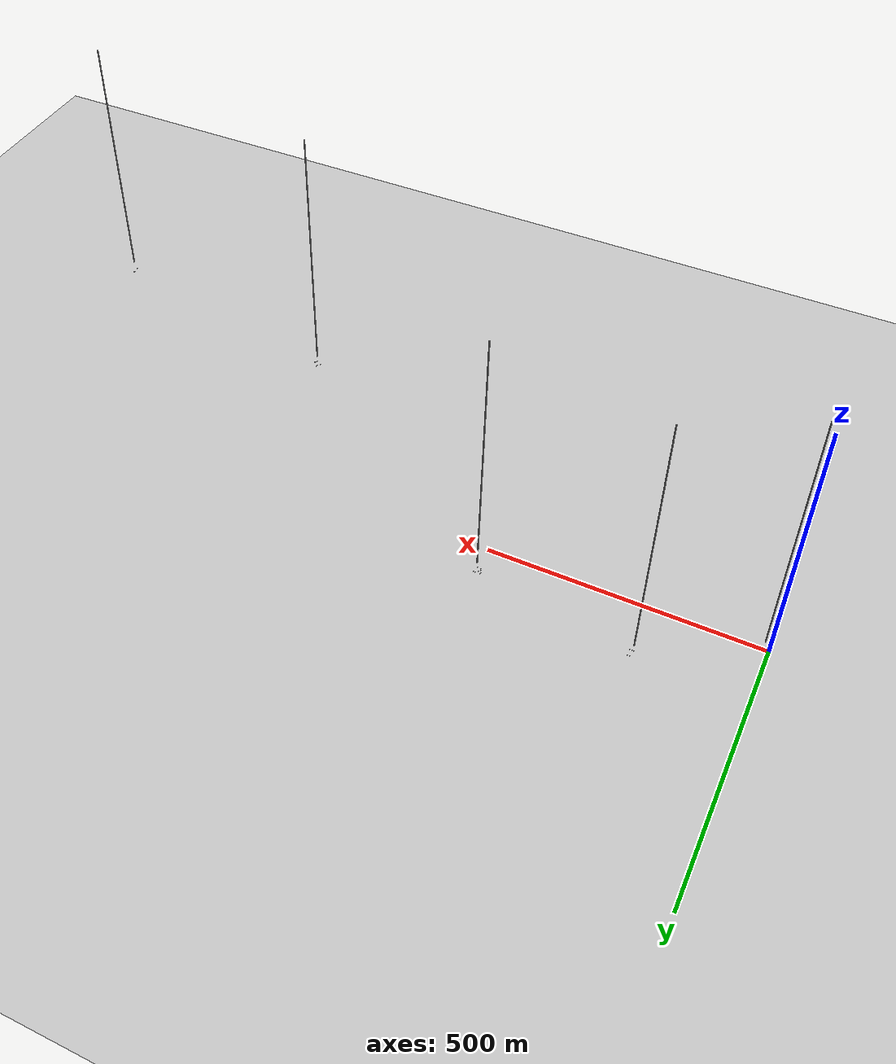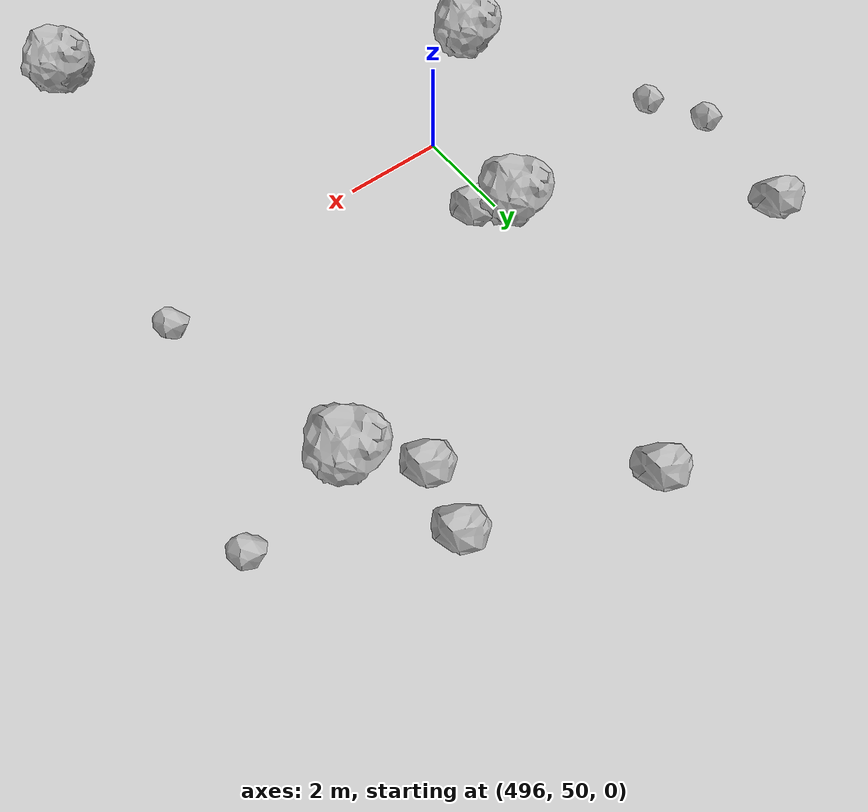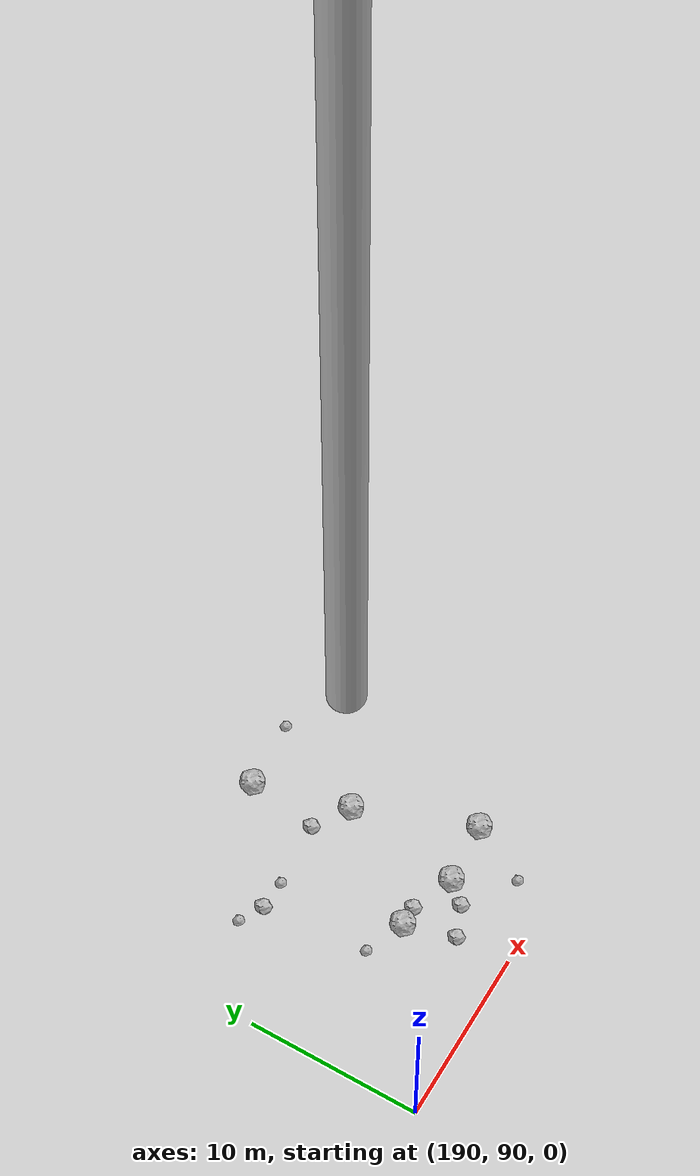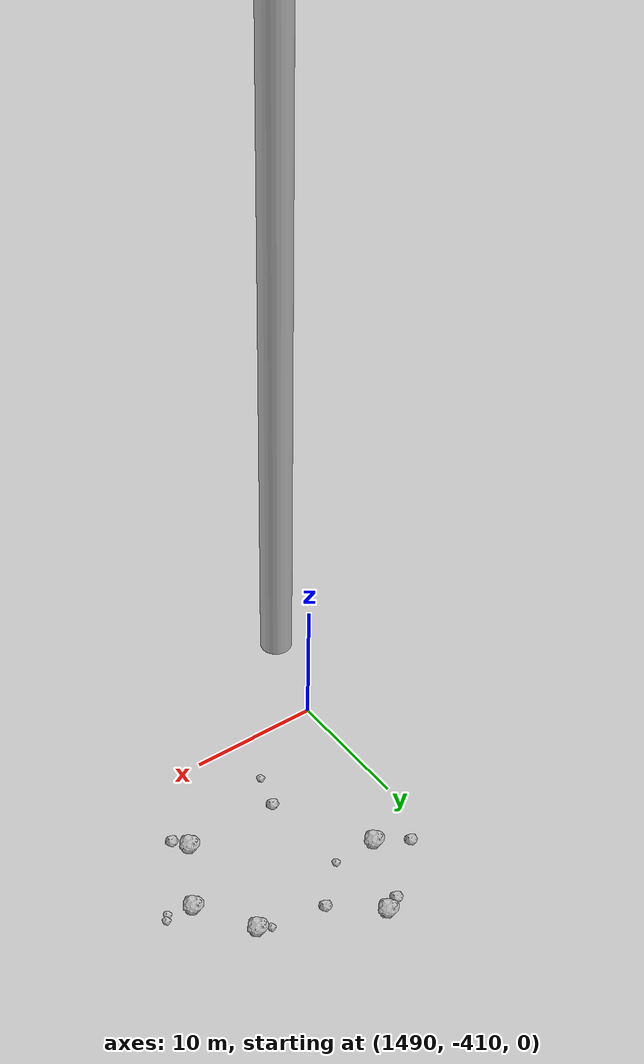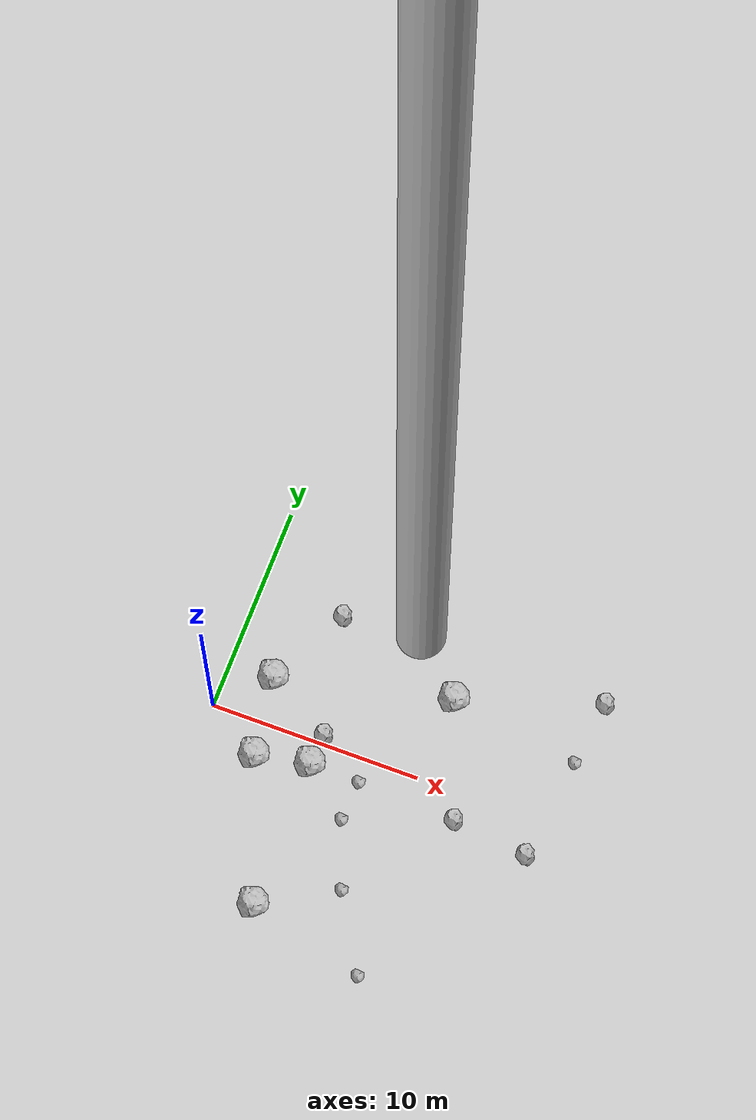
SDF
<?xml version="1.0" ?>
<sdf version="1.6">
  <world name="default">

    <include>
      <uri>model://custom_ground</uri>
    </include>

    <include>
      <uri>model://sun</uri>
    </include>

    <spherical_coordinates>
      <surface_model>EARTH_WGS84</surface_model>
      <latitude_deg>38.161479</latitude_deg>
      <longitude_deg>-122.454630</longitude_deg>
      <elevation>488.0</elevation>
      <heading_deg>90</heading_deg>
    </spherical_coordinates>

    <model name="rock1_0_0">
      <include>
        <uri>model://rock1</uri>
        <pose>5.200623718848694 -1.099234849515076 0.5 0 0 0</pose>
      </include>
    </model>
    <model name="rock1_0_1">
      <include>
        <uri>model://rock1</uri>
        <pose>2.6521650948005737 -1.5863023739304296 0.5 0 0 0</pose>
      </include>
    </model>
    <model name="rock1_0_2">
      <include>
        <uri>model://rock1</uri>
        <pose>5.157081732810451 -8.130435112517935 0.5 0 0 0</pose>
      </include>
    </model>
    <model name="rock1_0_3">
      <include>
        <uri>model://rock1</uri>
        <pose>2.1403976012273573 2.210959296261894 0.5 0 0 0</pose>
      </include>
    </model>
    <model name="rock1_0_4">
      <include>
        <uri>model://rock1</uri>
        <pose>10.306821330237073 4.091319596381691 0.5 0 0 0</pose>
      </include>
    </model>
    <model name="rock2_0_0">
      <include>
        <uri>model://rock2</uri>
        <pose>5.29711990925011 0.42488634888756316 0.3 0 0 0</pose>
      </include>
    </model>
    <model name="rock2_0_1">
      <include>
        <uri>model://rock2</uri>
        <pose>4.090443060447537 6.1144083832923 0.3 0 0 0</pose>
      </include>
    </model>
    <model name="rock2_0_2">
      <include>
        <uri>model://rock2</uri>
        <pose>16.891530778734797 6.300339461036181 0.3 0 0 0</pose>
      </include>
    </model>
    <model name="rock2_0_3">
      <include>
        <uri>model://rock2</uri>
        <pose>15.84847425956255 -1.7212737087640662 0.3 0 0 0</pose>
      </include>
    </model>
    <model name="rock2_0_4">
      <include>
        <uri>model://rock2</uri>
        <pose>12.253198391817705 -1.3102110759314733 0.3 0 0 0</pose>
      </include>
    </model>
    <model name="rock3_0_0">
      <include>
        <uri>model://rock3</uri>
        <pose>16.4779352869066 3.1235049282749614 0.2 0 0 0</pose>
      </include>
    </model>
    <model name="rock3_0_1">
      <include>
        <uri>model://rock3</uri>
        <pose>7.558734163673659 -1.1649159382895604 0.2 0 0 0</pose>
      </include>
    </model>
    <model name="rock3_0_2">
      <include>
        <uri>model://rock3</uri>
        <pose>7.43810770938812 -3.0807483274977843 0.2 0 0 0</pose>
      </include>
    </model>
    <model name="rock3_0_3">
      <include>
        <uri>model://rock3</uri>
        <pose>8.611061609684016 -6.15823987235721 0.2 0 0 0</pose>
      </include>
    </model>
    <model name="rock3_0_4">
      <include>
        <uri>model://rock3</uri>
        <pose>10.67189374547272 -9.610495099185961 0.2 0 0 0</pose>
      </include>
    </model>
    <model name="rock1_1_0">
      <include>
        <uri>model://rock1</uri>
        <pose>198.99465720246357 95.93368104823918 0.5 0 0 0</pose>
      </include>
    </model>
    <model name="rock1_1_1">
      <include>
        <uri>model://rock1</uri>
        <pose>203.68593651884635 101.9181057821608 0.5 0 0 0</pose>
      </include>
    </model>
    <model name="rock1_1_2">
      <include>
        <uri>model://rock1</uri>
        <pose>206.20688472292198 95.2435992280262 0.5 0 0 0</pose>
      </include>
    </model>
    <model name="rock1_1_3">
      <include>
        <uri>model://rock1</uri>
        <pose>202.6316412054863 94.98390644400939 0.5 0 0 0</pose>
      </include>
    </model>
    <model name="rock1_1_4">
      <include>
        <uri>model://rock1</uri>
        <pose>202.25783639530306 107.40251077478328 0.5 0 0 0</pose>
      </include>
    </model>
    <model name="rock2_1_0">
      <include>
        <uri>model://rock2</uri>
        <pose>199.79224602014327 93.09938691724562 0.3 0 0 0</pose>
      </include>
    </model>
    <model name="rock2_1_1">
      <include>
        <uri>model://rock2</uri>
        <pose>201.59366736626282 103.25740187328574 0.3 0 0 0</pose>
      </include>
    </model>
    <model name="rock2_1_2">
      <include>
        <uri>model://rock2</uri>
        <pose>201.57796424724825 93.83898492390144 0.3 0 0 0</pose>
      </include>
    </model>
    <model name="rock2_1_3">
      <include>
        <uri>model://rock2</uri>
        <pose>196.0915089503328 103.0050641071812 0.3 0 0 0</pose>
      </include>
    </model>
    <model name="rock2_1_4">
      <include>
        <uri>model://rock2</uri>
        <pose>200.14915566610057 95.9876950059984 0.3 0 0 0</pose>
      </include>
    </model>
    <model name="rock3_1_0">
      <include>
        <uri>model://rock3</uri>
        <pose>194.71881131509696 103.71089076770627 0.2 0 0 0</pose>
      </include>
    </model>
    <model name="rock3_1_1">
      <include>
        <uri>model://rock3</uri>
        <pose>204.43563779939564 91.86958886467538 0.2 0 0 0</pose>
      </include>
    </model>
    <model name="rock3_1_2">
      <include>
        <uri>model://rock3</uri>
        <pose>197.80482348156335 102.91424485020855 0.2 0 0 0</pose>
      </include>
    </model>
    <model name="rock3_1_3">
      <include>
        <uri>model://rock3</uri>
        <pose>196.65824228415363 96.8664113193552 0.2 0 0 0</pose>
      </include>
    </model>
    <model name="rock3_1_4">
      <include>
        <uri>model://rock3</uri>
        <pose>206.29187312427277 107.70880326059697 0.2 0 0 0</pose>
      </include>
    </model>
    <model name="rock1_2_0">
      <include>
        <uri>model://rock1</uri>
        <pose>494.9394130445547 44.38334063213144 0.5 0 0 0</pose>
      </include>
    </model>
    <model name="rock1_2_1">
      <include>
        <uri>model://rock1</uri>
        <pose>495.80698720943786 52.23374139064787 0.5 0 0 0</pose>
      </include>
    </model>
    <model name="rock1_2_2">
      <include>
        <uri>model://rock1</uri>
        <pose>493.6467602457229 48.02623073510495 0.5 0 0 0</pose>
      </include>
    </model>
    <model name="rock1_2_3">
      <include>
        <uri>model://rock1</uri>
        <pose>501.36210341594307 54.686411790520154 0.5 0 0 0</pose>
      </include>
    </model>
    <model name="rock1_2_4">
      <include>
        <uri>model://rock1</uri>
        <pose>501.16333991115386 43.66340883915165 0.5 0 0 0</pose>
      </include>
    </model>
    <model name="rock2_2_0">
      <include>
        <uri>model://rock2</uri>
        <pose>491.67033750648926 55.306317036938225 0.3 0 0 0</pose>
      </include>
    </model>
    <model name="rock2_2_1">
      <include>
        <uri>model://rock2</uri>
        <pose>500.67471125878143 56.878639543178764 0.3 0 0 0</pose>
      </include>
    </model>
    <model name="rock2_2_2">
      <include>
        <uri>model://rock2</uri>
        <pose>496.4556434208185 51.920262410391956 0.3 0 0 0</pose>
      </include>
    </model>
    <model name="rock2_2_3">
      <include>
        <uri>model://rock2</uri>
        <pose>497.42959204010936 58.02079973821261 0.3 0 0 0</pose>
      </include>
    </model>
    <model name="rock2_2_4">
      <include>
        <uri>model://rock2</uri>
        <pose>500.4163767706244 55.6774204017822 0.3 0 0 0</pose>
      </include>
    </model>
    <model name="rock3_2_0">
      <include>
        <uri>model://rock3</uri>
        <pose>491.08813692338026 52.850177081971594 0.2 0 0 0</pose>
      </include>
    </model>
    <model name="rock3_2_1">
      <include>
        <uri>model://rock3</uri>
        <pose>503.52663036405266 55.09979989741696 0.2 0 0 0</pose>
      </include>
    </model>
    <model name="rock3_2_2">
      <include>
        <uri>model://rock3</uri>
        <pose>507.56616186734095 51.75099693447585 0.2 0 0 0</pose>
      </include>
    </model>
    <model name="rock3_2_3">
      <include>
        <uri>model://rock3</uri>
        <pose>491.68667708348397 51.76135187600983 0.2 0 0 0</pose>
      </include>
    </model>
    <model name="rock3_2_4">
      <include>
        <uri>model://rock3</uri>
        <pose>502.40020131319534 50.66798853968155 0.2 0 0 0</pose>
      </include>
    </model>
    <model name="rock1_3_0">
      <include>
        <uri>model://rock1</uri>
        <pose>998.5873856364169 -295.07338160152545 0.5 0 0 0</pose>
      </include>
    </model>
    <model name="rock1_3_1">
      <include>
        <uri>model://rock1</uri>
        <pose>993.8413497558981 -300.7449317707903 0.5 0 0 0</pose>
      </include>
    </model>
    <model name="rock1_3_2">
      <include>
        <uri>model://rock1</uri>
        <pose>999.4583168986735 -292.70320367497635 0.5 0 0 0</pose>
      </include>
    </model>
    <model name="rock1_3_3">
      <include>
        <uri>model://rock1</uri>
        <pose>1004.5605546431192 -292.01034083484626 0.5 0 0 0</pose>
      </include>
    </model>
    <model name="rock1_3_4">
      <include>
        <uri>model://rock1</uri>
        <pose>1007.002162711191 -303.50381626831364 0.5 0 0 0</pose>
      </include>
    </model>
    <model name="rock2_3_0">
      <include>
        <uri>model://rock2</uri>
        <pose>1001.9269086629382 -291.0291387563718 0.3 0 0 0</pose>
      </include>
    </model>
    <model name="rock2_3_1">
      <include>
        <uri>model://rock2</uri>
        <pose>1008.2239252956324 -303.12178079028143 0.3 0 0 0</pose>
      </include>
    </model>
    <model name="rock2_3_2">
      <include>
        <uri>model://rock2</uri>
        <pose>1004.609583134679 -301.1310119342721 0.3 0 0 0</pose>
      </include>
    </model>
    <model name="rock2_3_3">
      <include>
        <uri>model://rock2</uri>
        <pose>1004.4142280922955 -306.6257480871457 0.3 0 0 0</pose>
      </include>
    </model>
    <model name="rock2_3_4">
      <include>
        <uri>model://rock2</uri>
        <pose>997.213323168043 -293.7820617827055 0.3 0 0 0</pose>
      </include>
    </model>
    <model name="rock3_3_0">
      <include>
        <uri>model://rock3</uri>
        <pose>999.5065832592808 -307.5974970730335 0.2 0 0 0</pose>
      </include>
    </model>
    <model name="rock3_3_1">
      <include>
        <uri>model://rock3</uri>
        <pose>992.1080397692676 -305.2402056048379 0.2 0 0 0</pose>
      </include>
    </model>
    <model name="rock3_3_2">
      <include>
        <uri>model://rock3</uri>
        <pose>991.5041915368619 -296.9358681679286 0.2 0 0 0</pose>
      </include>
    </model>
    <model name="rock3_3_3">
      <include>
        <uri>model://rock3</uri>
        <pose>997.3045726632818 -294.27683478726186 0.2 0 0 0</pose>
      </include>
    </model>
    <model name="rock3_3_4">
      <include>
        <uri>model://rock3</uri>
        <pose>993.863682268145 -297.92090319082683 0.2 0 0 0</pose>
      </include>
    </model>
    <model name="rock1_4_0">
      <include>
        <uri>model://rock1</uri>
        <pose>1507.8724770869726 -398.83510399398335 0.5 0 0 0</pose>
      </include>
    </model>
    <model name="rock1_4_1">
      <include>
        <uri>model://rock1</uri>
        <pose>1505.311716645985 -394.74664430359115 0.5 0 0 0</pose>
      </include>
    </model>
    <model name="rock1_4_2">
      <include>
        <uri>model://rock1</uri>
        <pose>1494.1133106579177 -396.36094385547176 0.5 0 0 0</pose>
      </include>
    </model>
    <model name="rock1_4_3">
      <include>
        <uri>model://rock1</uri>
        <pose>1505.0884442435665 -403.5792258670577 0.5 0 0 0</pose>
      </include>
    </model>
    <model name="rock1_4_4">
      <include>
        <uri>model://rock1</uri>
        <pose>1497.093138543031 -390.8718707674544 0.5 0 0 0</pose>
      </include>
    </model>
    <model name="rock2_4_0">
      <include>
        <uri>model://rock2</uri>
        <pose>1491.806246435322 -394.97751073568213 0.3 0 0 0</pose>
      </include>
    </model>
    <model name="rock2_4_1">
      <include>
        <uri>model://rock2</uri>
        <pose>1505.8245998281172 -404.7037292508783 0.3 0 0 0</pose>
      </include>
    </model>
    <model name="rock2_4_2">
      <include>
        <uri>model://rock2</uri>
        <pose>1500.3246259391026 -393.6827552414124 0.3 0 0 0</pose>
      </include>
    </model>
    <model name="rock2_4_3">
      <include>
        <uri>model://rock2</uri>
        <pose>1495.8662327277164 -391.4617801069861 0.3 0 0 0</pose>
      </include>
    </model>
    <model name="rock2_4_4">
      <include>
        <uri>model://rock2</uri>
        <pose>1497.9357220867803 -403.4530867683356 0.3 0 0 0</pose>
      </include>
    </model>
    <model name="rock3_4_0">
      <include>
        <uri>model://rock3</uri>
        <pose>1497.1078298390782 -406.14942031267947 0.2 0 0 0</pose>
      </include>
    </model>
    <model name="rock3_4_1">
      <include>
        <uri>model://rock3</uri>
        <pose>1509.915040433513 -398.99280916102623 0.2 0 0 0</pose>
      </include>
    </model>
    <model name="rock3_4_2">
      <include>
        <uri>model://rock3</uri>
        <pose>1497.352317376179 -396.463825159697 0.2 0 0 0</pose>
      </include>
    </model>
    <model name="rock3_4_3">
      <include>
        <uri>model://rock3</uri>
        <pose>1509.5796335736188 -399.3937539998875 0.2 0 0 0</pose>
      </include>
    </model>
    <model name="rock3_4_4">
      <include>
        <uri>model://rock3</uri>
        <pose>1504.3438708856993 -394.40456153977647 0.2 0 0 0</pose>
      </include>
    </model>

    <model name="cylinder_1">
      <static>true</static>
      <link name="link">
        <visual name="visual">
          <geometry>
            <cylinder>
              <radius>1</radius>
              <length>500</length>
            </cylinder>
          </geometry>
        </visual>
      </link>
      <pose>10 0 270 0 0 0</pose>
    </model>

    <model name="cylinder_2">
      <static>true</static>
      <link name="link">
        <visual name="visual">
          <geometry>
            <cylinder>
              <radius>1</radius>
              <length>500</length>
            </cylinder>
          </geometry>
        </visual>
      </link>
      <pose>200 100 270 0 0 0</pose>
    </model>

    <model name="cylinder_3">
      <static>true</static>
      <link name="link">
        <visual name="visual">
          <geometry>
            <cylinder>
              <radius>1</radius>
              <length>500</length>
            </cylinder>
          </geometry>
        </visual>
      </link>
      <pose>500 50 270 0 0 0</pose>
    </model>

    <model name="cylinder_4">
      <static>true</static>
      <link name="link">
        <visual name="visual">
          <geometry>
            <cylinder>
              <radius>1</radius>
              <length>500</length>
            </cylinder>
          </geometry>
        </visual>
      </link>
      <pose>1000 -300 270 0 0 0</pose>
    </model>

    <model name="cylinder_5">
      <static>true</static>
      <link name="link">
        <visual name="visual">
          <geometry>
            <cylinder>
              <radius>1</radius>
              <length>500</length>
            </cylinder>
          </geometry>
        </visual>
      </link>
      <pose>1500 -400 270 0 0 0</pose>
    </model>

  </world>
</sdf>

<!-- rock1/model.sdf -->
<sdf version="1.6">
  <model name="rock1">
    <static>true</static> <!-- Set to true if the model should not move -->
    <pose>0 0 0 0 0 0</pose>

    <!--z offset is 0.5 for full scale-->

    <link name="link">
      <collision name="rock1_collision">
        <geometry>
          <mesh>
            <uri>model://meshes/rock1.dae</uri>
          </mesh>
        </geometry>
      </collision>
      <visual name="rock1_visual">
        <geometry>
          <mesh>
            <uri>model://meshes/rock1.dae</uri>
          </mesh>
        </geometry>
        <material>
          <script>
            <uri>model://materials/scripts/sand_pebbles.material</uri>
            <name>custom_ground/Image</name>
          </script>
        </material>
      </visual>
    </link>
  </model>
</sdf>

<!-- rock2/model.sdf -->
<sdf version="1.6">
  <model name="rock2">
    <static>true</static> <!-- Set to true if the model should not move -->
    <pose>0 0 0 0 0 0</pose>

    <!--z offset is 0.3 for full scale-->

    <link name="link">
      <collision name="rock2_collision">
        <geometry>
          <mesh>
            <uri>model://meshes/rock2.dae</uri>
          </mesh>
        </geometry>
      </collision>
      <visual name="rock2_visual">
        <geometry>
          <mesh>
            <uri>model://meshes/rock2.dae</uri>
          </mesh>
        </geometry>
        <material>
          <script>
            <uri>model://materials/scripts/sand_pebbles.material</uri>
            <name>custom_ground/Image</name>
          </script>
        </material>
      </visual>
    </link>
  </model>
</sdf>

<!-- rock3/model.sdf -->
<sdf version="1.6">
  <model name="rock3">
    <static>true</static> <!-- Set to true if the model should not move -->
    <pose>0 0 0 0 0 0</pose>

    <!--z offset is 0.2 for full scale-->

    <link name="link">
      <collision name="rock3_collision">
        <geometry>
          <mesh>
            <uri>model://meshes/rock3.dae</uri>
          </mesh>
        </geometry>
      </collision>
      <visual name="rock3_visual">
        <geometry>
          <mesh>
            <uri>model://meshes/rock3.dae</uri>
          </mesh>
        </geometry>
        <material>
          <script>
            <uri>model://materials/scripts/sand_pebbles.material</uri>
            <name>custom_ground/Image</name>
          </script>
        </material>
      </visual>
    </link>
  </model>
</sdf>

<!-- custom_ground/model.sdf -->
<sdf version="1.6">
  <model name="custom_ground">
    <static>true</static> <!-- Ground is static and immovable -->
    <link name="ground_link">
      <pose>240 0 0 0 0 0</pose> <!-- Position and orientation relative to the world -->
      <!-- Visual Representation -->
      <visual name="ground_visual">
        <geometry>
          <plane>
            <normal>0 0 1</normal> <!-- Upward facing plane -->
            <size>500 500</size> <!-- Size of the plane -->
          </plane>
        </geometry>
        <material>
          <script>
            <uri>model://materials/scripts/sand_pebbles.material</uri>
            <name>custom_ground/Image</name>
          </script>
        </material>
      </visual>

      <!-- Collision Representation -->
      <collision name="ground_collision">
        <geometry>
          <plane>
            <normal>0 0 1</normal>
            <size>100 100</size>
          </plane>
        </geometry>
      </collision>

    </link>
  </model>
</sdf>
